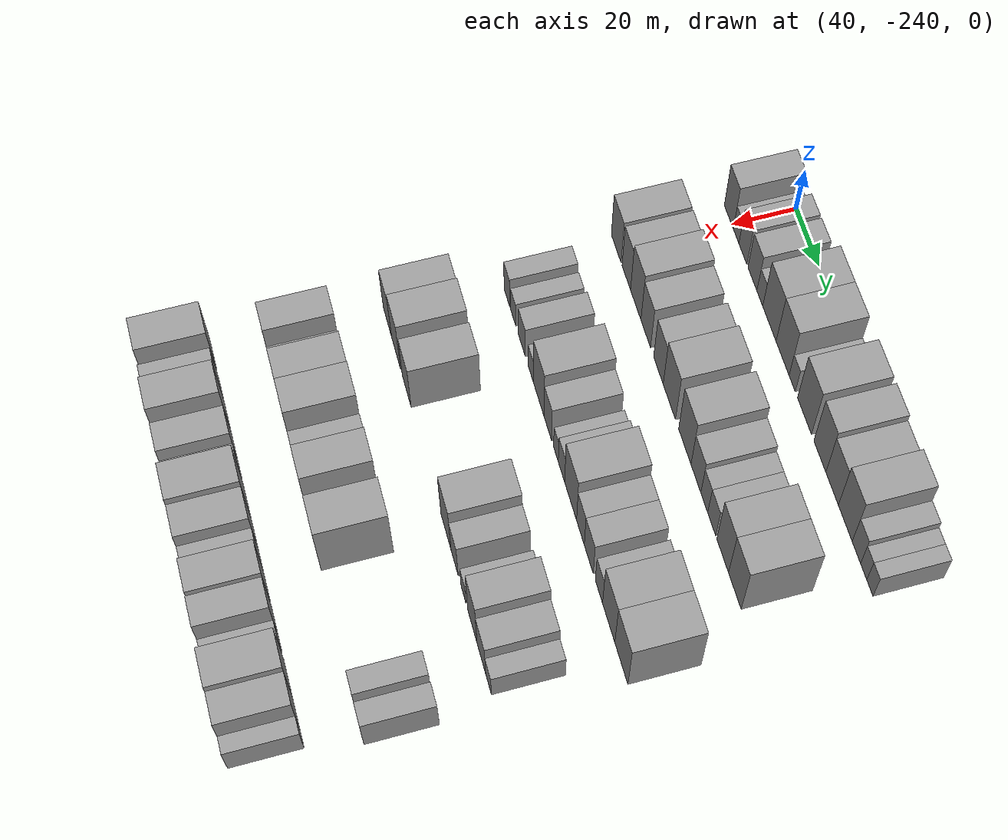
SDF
<sdf version="1.6">
 <world name="default">
  <model name="building_38">
   <static>1</static>
   <pose>50.0000 -242.8320 0 0.000000 0.000000 0.000000</pose>
   <link name="link">
    <pose>0 0 10.50 0 0 0</pose>
    <collision name="collision"><geometry><box><size>20.0000 8.5311 21.0000</size></box></geometry></collision>
    <visual name="visual">
     <cast_shadows>0</cast_shadows>
     <geometry><box><size>20.0000 8.5311 21.0000</size></box></geometry>
     <material>
      <script>
       <uri>model://grey_wall/materials/scripts</uri>
       <uri>model://grey_wall/materials/textures</uri>
       <name>vrc/grey_wall</name>
      </script>
     </material>
    </visual>
   </link>
  </model>
  <model name="building_39">
   <static>1</static>
   <pose>50.0000 -235.9867 0 0.000000 0.000000 0.000000</pose>
   <link name="link">
    <pose>0 0 6.00 0 0 0</pose>
    <collision name="collision"><geometry><box><size>20.0000 5.1596 12.0000</size></box></geometry></collision>
    <visual name="visual">
     <cast_shadows>0</cast_shadows>
     <geometry><box><size>20.0000 5.1596 12.0000</size></box></geometry>
     <material>
      <script>
       <uri>model://grey_wall/materials/scripts</uri>
       <uri>model://grey_wall/materials/textures</uri>
       <name>vrc/grey_wall</name>
      </script>
     </material>
    </visual>
   </link>
  </model>
  <model name="building_40">
   <static>1</static>
   <pose>50.0000 -229.7110 0 0.000000 0.000000 0.000000</pose>
   <link name="link">
    <pose>0 0 9.00 0 0 0</pose>
    <collision name="collision"><geometry><box><size>20.0000 7.3917 18.0000</size></box></geometry></collision>
    <visual name="visual">
     <cast_shadows>0</cast_shadows>
     <geometry><box><size>20.0000 7.3917 18.0000</size></box></geometry>
     <material>
      <script>
       <uri>model://grey_wall/materials/scripts</uri>
       <uri>model://grey_wall/materials/textures</uri>
       <name>vrc/grey_wall</name>
      </script>
     </material>
    </visual>
   </link>
  </model>
  <model name="building_41">
   <static>1</static>
   <pose>50.0000 -220.9175 0 0.000000 0.000000 0.000000</pose>
   <link name="link">
    <pose>0 0 9.00 0 0 0</pose>
    <collision name="collision"><geometry><box><size>20.0000 8.1954 18.0000</size></box></geometry></collision>
    <visual name="visual">
     <cast_shadows>0</cast_shadows>
     <geometry><box><size>20.0000 8.1954 18.0000</size></box></geometry>
     <material>
      <script>
       <uri>model://grey_wall/materials/scripts</uri>
       <uri>model://grey_wall/materials/textures</uri>
       <name>vrc/grey_wall</name>
      </script>
     </material>
    </visual>
   </link>
  </model>
  <model name="building_42">
   <static>1</static>
   <pose>50.0000 -214.1759 0 0.000000 0.000000 0.000000</pose>
   <link name="link">
    <pose>0 0 6.00 0 0 0</pose>
    <collision name="collision"><geometry><box><size>20.0000 5.2878 12.0000</size></box></geometry></collision>
    <visual name="visual">
     <cast_shadows>0</cast_shadows>
     <geometry><box><size>20.0000 5.2878 12.0000</size></box></geometry>
     <material>
      <script>
       <uri>model://grey_wall/materials/scripts</uri>
       <uri>model://grey_wall/materials/textures</uri>
       <name>vrc/grey_wall</name>
      </script>
     </material>
    </visual>
   </link>
  </model>
  <model name="building_43">
   <static>1</static>
   <pose>50.0000 -205.5564 0 0.000000 0.000000 0.000000</pose>
   <link name="link">
    <pose>0 0 12.00 0 0 0</pose>
    <collision name="collision"><geometry><box><size>20.0000 11.9513 24.0000</size></box></geometry></collision>
    <visual name="visual">
     <cast_shadows>0</cast_shadows>
     <geometry><box><size>20.0000 11.9513 24.0000</size></box></geometry>
     <material>
      <script>
       <uri>model://grey_wall/materials/scripts</uri>
       <uri>model://grey_wall/materials/textures</uri>
       <name>vrc/grey_wall</name>
      </script>
     </material>
    </visual>
   </link>
  </model>
  <model name="building_44">
   <static>1</static>
   <pose>50.0000 -193.8797 0 0.000000 0.000000 0.000000</pose>
   <link name="link">
    <pose>0 0 12.00 0 0 0</pose>
    <collision name="collision"><geometry><box><size>20.0000 11.4021 24.0000</size></box></geometry></collision>
    <visual name="visual">
     <cast_shadows>0</cast_shadows>
     <geometry><box><size>20.0000 11.4021 24.0000</size></box></geometry>
     <material>
      <script>
       <uri>model://grey_wall/materials/scripts</uri>
       <uri>model://grey_wall/materials/textures</uri>
       <name>vrc/grey_wall</name>
      </script>
     </material>
    </visual>
   </link>
  </model>
  <model name="building_45">
   <static>1</static>
   <pose>50.0000 -185.5075 0 0.000000 0.000000 0.000000</pose>
   <link name="link">
    <pose>0 0 6.00 0 0 0</pose>
    <collision name="collision"><geometry><box><size>20.0000 5.3423 12.0000</size></box></geometry></collision>
    <visual name="visual">
     <cast_shadows>0</cast_shadows>
     <geometry><box><size>20.0000 5.3423 12.0000</size></box></geometry>
     <material>
      <script>
       <uri>model://grey_wall/materials/scripts</uri>
       <uri>model://grey_wall/materials/textures</uri>
       <name>vrc/grey_wall</name>
      </script>
     </material>
    </visual>
   </link>
  </model>
  <model name="building_46">
   <static>1</static>
   <pose>50.0000 -174.8966 0 0.000000 0.000000 0.000000</pose>
   <link name="link">
    <pose>0 0 12.00 0 0 0</pose>
    <collision name="collision"><geometry><box><size>20.0000 11.8794 24.0000</size></box></geometry></collision>
    <visual name="visual">
     <cast_shadows>0</cast_shadows>
     <geometry><box><size>20.0000 11.8794 24.0000</size></box></geometry>
     <material>
      <script>
       <uri>model://grey_wall/materials/scripts</uri>
       <uri>model://grey_wall/materials/textures</uri>
       <name>vrc/grey_wall</name>
      </script>
     </material>
    </visual>
   </link>
  </model>
  <model name="building_47">
   <static>1</static>
   <pose>50.0000 -161.9570 0 0.000000 0.000000 0.000000</pose>
   <link name="link">
    <pose>0 0 12.00 0 0 0</pose>
    <collision name="collision"><geometry><box><size>20.0000 9.9998 24.0000</size></box></geometry></collision>
    <visual name="visual">
     <cast_shadows>0</cast_shadows>
     <geometry><box><size>20.0000 9.9998 24.0000</size></box></geometry>
     <material>
      <script>
       <uri>model://grey_wall/materials/scripts</uri>
       <uri>model://grey_wall/materials/textures</uri>
       <name>vrc/grey_wall</name>
      </script>
     </material>
    </visual>
   </link>
  </model>
  <model name="building_48">
   <static>1</static>
   <pose>50.0000 -151.8180 0 0.000000 0.000000 0.000000</pose>
   <link name="link">
    <pose>0 0 10.50 0 0 0</pose>
    <collision name="collision"><geometry><box><size>20.0000 10.2782 21.0000</size></box></geometry></collision>
    <visual name="visual">
     <cast_shadows>0</cast_shadows>
     <geometry><box><size>20.0000 10.2782 21.0000</size></box></geometry>
     <material>
      <script>
       <uri>model://grey_wall/materials/scripts</uri>
       <uri>model://grey_wall/materials/textures</uri>
       <name>vrc/grey_wall</name>
      </script>
     </material>
    </visual>
   </link>
  </model>
  <model name="building_49">
   <static>1</static>
   <pose>50.0000 -141.1139 0 0.000000 0.000000 0.000000</pose>
   <link name="link">
    <pose>0 0 12.00 0 0 0</pose>
    <collision name="collision"><geometry><box><size>20.0000 11.1299 24.0000</size></box></geometry></collision>
    <visual name="visual">
     <cast_shadows>0</cast_shadows>
     <geometry><box><size>20.0000 11.1299 24.0000</size></box></geometry>
     <material>
      <script>
       <uri>model://grey_wall/materials/scripts</uri>
       <uri>model://grey_wall/materials/textures</uri>
       <name>vrc/grey_wall</name>
      </script>
     </material>
    </visual>
   </link>
  </model>
  <model name="building_50">
   <static>1</static>
   <pose>50.0000 -132.1988 0 0.000000 0.000000 0.000000</pose>
   <link name="link">
    <pose>0 0 7.50 0 0 0</pose>
    <collision name="collision"><geometry><box><size>20.0000 6.7003 15.0000</size></box></geometry></collision>
    <visual name="visual">
     <cast_shadows>0</cast_shadows>
     <geometry><box><size>20.0000 6.7003 15.0000</size></box></geometry>
     <material>
      <script>
       <uri>model://grey_wall/materials/scripts</uri>
       <uri>model://grey_wall/materials/textures</uri>
       <name>vrc/grey_wall</name>
      </script>
     </material>
    </visual>
   </link>
  </model>
  <model name="building_51">
   <static>1</static>
   <pose>50.0000 -126.4093 0 0.000000 0.000000 0.000000</pose>
   <link name="link">
    <pose>0 0 6.00 0 0 0</pose>
    <collision name="collision"><geometry><box><size>20.0000 4.8786 12.0000</size></box></geometry></collision>
    <visual name="visual">
     <cast_shadows>0</cast_shadows>
     <geometry><box><size>20.0000 4.8786 12.0000</size></box></geometry>
     <material>
      <script>
       <uri>model://grey_wall/materials/scripts</uri>
       <uri>model://grey_wall/materials/textures</uri>
       <name>vrc/grey_wall</name>
      </script>
     </material>
    </visual>
   </link>
  </model>
  <model name="building_52">
   <static>1</static>
   <pose>50.0000 -121.5417 0 0.000000 0.000000 0.000000</pose>
   <link name="link">
    <pose>0 0 6.00 0 0 0</pose>
    <collision name="collision"><geometry><box><size>20.0000 4.8564 12.0000</size></box></geometry></collision>
    <visual name="visual">
     <cast_shadows>0</cast_shadows>
     <geometry><box><size>20.0000 4.8564 12.0000</size></box></geometry>
     <material>
      <script>
       <uri>model://grey_wall/materials/scripts</uri>
       <uri>model://grey_wall/materials/textures</uri>
       <name>vrc/grey_wall</name>
      </script>
     </material>
    </visual>
   </link>
  </model>
  <model name="building_160">
   <static>1</static>
   <pose>85.0000 -241.2254 0 0.000000 0.000000 0.000000</pose>
   <link name="link">
    <pose>0 0 10.50 0 0 0</pose>
    <collision name="collision"><geometry><box><size>20.0000 9.8680 21.0000</size></box></geometry></collision>
    <visual name="visual">
     <cast_shadows>0</cast_shadows>
     <geometry><box><size>20.0000 9.8680 21.0000</size></box></geometry>
     <material>
      <script>
       <uri>model://grey_wall/materials/scripts</uri>
       <uri>model://grey_wall/materials/textures</uri>
       <name>vrc/grey_wall</name>
      </script>
     </material>
    </visual>
   </link>
  </model>
  <model name="building_161">
   <static>1</static>
   <pose>85.0000 -231.0480 0 0.000000 0.000000 0.000000</pose>
   <link name="link">
    <pose>0 0 10.50 0 0 0</pose>
    <collision name="collision"><geometry><box><size>20.0000 8.4869 21.0000</size></box></geometry></collision>
    <visual name="visual">
     <cast_shadows>0</cast_shadows>
     <geometry><box><size>20.0000 8.4869 21.0000</size></box></geometry>
     <material>
      <script>
       <uri>model://grey_wall/materials/scripts</uri>
       <uri>model://grey_wall/materials/textures</uri>
       <name>vrc/grey_wall</name>
      </script>
     </material>
    </visual>
   </link>
  </model>
  <model name="building_162">
   <static>1</static>
   <pose>85.0000 -221.6470 0 0.000000 0.000000 0.000000</pose>
   <link name="link">
    <pose>0 0 12.00 0 0 0</pose>
    <collision name="collision"><geometry><box><size>20.0000 10.3151 24.0000</size></box></geometry></collision>
    <visual name="visual">
     <cast_shadows>0</cast_shadows>
     <geometry><box><size>20.0000 10.3151 24.0000</size></box></geometry>
     <material>
      <script>
       <uri>model://grey_wall/materials/scripts</uri>
       <uri>model://grey_wall/materials/textures</uri>
       <name>vrc/grey_wall</name>
      </script>
     </material>
    </visual>
   </link>
  </model>
  <model name="building_163">
   <static>1</static>
   <pose>85.0000 -211.7996 0 0.000000 0.000000 0.000000</pose>
   <link name="link">
    <pose>0 0 10.50 0 0 0</pose>
    <collision name="collision"><geometry><box><size>20.0000 9.3796 21.0000</size></box></geometry></collision>
    <visual name="visual">
     <cast_shadows>0</cast_shadows>
     <geometry><box><size>20.0000 9.3796 21.0000</size></box></geometry>
     <material>
      <script>
       <uri>model://grey_wall/materials/scripts</uri>
       <uri>model://grey_wall/materials/textures</uri>
       <name>vrc/grey_wall</name>
      </script>
     </material>
    </visual>
   </link>
  </model>
  <model name="building_164">
   <static>1</static>
   <pose>85.0000 -199.5471 0 0.000000 0.000000 0.000000</pose>
   <link name="link">
    <pose>0 0 10.50 0 0 0</pose>
    <collision name="collision"><geometry><box><size>20.0000 9.1254 21.0000</size></box></geometry></collision>
    <visual name="visual">
     <cast_shadows>0</cast_shadows>
     <geometry><box><size>20.0000 9.1254 21.0000</size></box></geometry>
     <material>
      <script>
       <uri>model://grey_wall/materials/scripts</uri>
       <uri>model://grey_wall/materials/textures</uri>
       <name>vrc/grey_wall</name>
      </script>
     </material>
    </visual>
   </link>
  </model>
  <model name="building_165">
   <static>1</static>
   <pose>85.0000 -189.2018 0 0.000000 0.000000 0.000000</pose>
   <link name="link">
    <pose>0 0 12.00 0 0 0</pose>
    <collision name="collision"><geometry><box><size>20.0000 11.5653 24.0000</size></box></geometry></collision>
    <visual name="visual">
     <cast_shadows>0</cast_shadows>
     <geometry><box><size>20.0000 11.5653 24.0000</size></box></geometry>
     <material>
      <script>
       <uri>model://grey_wall/materials/scripts</uri>
       <uri>model://grey_wall/materials/textures</uri>
       <name>vrc/grey_wall</name>
      </script>
     </material>
    </visual>
   </link>
  </model>
  <model name="building_166">
   <static>1</static>
   <pose>85.0000 -174.7429 0 0.000000 0.000000 0.000000</pose>
   <link name="link">
    <pose>0 0 12.00 0 0 0</pose>
    <collision name="collision"><geometry><box><size>20.0000 11.3525 24.0000</size></box></geometry></collision>
    <visual name="visual">
     <cast_shadows>0</cast_shadows>
     <geometry><box><size>20.0000 11.3525 24.0000</size></box></geometry>
     <material>
      <script>
       <uri>model://grey_wall/materials/scripts</uri>
       <uri>model://grey_wall/materials/textures</uri>
       <name>vrc/grey_wall</name>
      </script>
     </material>
    </visual>
   </link>
  </model>
  <model name="building_167">
   <static>1</static>
   <pose>85.0000 -164.6073 0 0.000000 0.000000 0.000000</pose>
   <link name="link">
    <pose>0 0 9.00 0 0 0</pose>
    <collision name="collision"><geometry><box><size>20.0000 8.9186 18.0000</size></box></geometry></collision>
    <visual name="visual">
     <cast_shadows>0</cast_shadows>
     <geometry><box><size>20.0000 8.9186 18.0000</size></box></geometry>
     <material>
      <script>
       <uri>model://grey_wall/materials/scripts</uri>
       <uri>model://grey_wall/materials/textures</uri>
       <name>vrc/grey_wall</name>
      </script>
     </material>
    </visual>
   </link>
  </model>
  <model name="building_168">
   <static>1</static>
   <pose>85.0000 -157.0738 0 0.000000 0.000000 0.000000</pose>
   <link name="link">
    <pose>0 0 7.50 0 0 0</pose>
    <collision name="collision"><geometry><box><size>20.0000 6.1484 15.0000</size></box></geometry></collision>
    <visual name="visual">
     <cast_shadows>0</cast_shadows>
     <geometry><box><size>20.0000 6.1484 15.0000</size></box></geometry>
     <material>
      <script>
       <uri>model://grey_wall/materials/scripts</uri>
       <uri>model://grey_wall/materials/textures</uri>
       <name>vrc/grey_wall</name>
      </script>
     </material>
    </visual>
   </link>
  </model>
  <model name="building_169">
   <static>1</static>
   <pose>85.0000 -150.4906 0 0.000000 0.000000 0.000000</pose>
   <link name="link">
    <pose>0 0 7.50 0 0 0</pose>
    <collision name="collision"><geometry><box><size>20.0000 7.0179 15.0000</size></box></geometry></collision>
    <visual name="visual">
     <cast_shadows>0</cast_shadows>
     <geometry><box><size>20.0000 7.0179 15.0000</size></box></geometry>
     <material>
      <script>
       <uri>model://grey_wall/materials/scripts</uri>
       <uri>model://grey_wall/materials/textures</uri>
       <name>vrc/grey_wall</name>
      </script>
     </material>
    </visual>
   </link>
  </model>
  <model name="building_170">
   <static>1</static>
   <pose>85.0000 -140.8677 0 0.000000 0.000000 0.000000</pose>
   <link name="link">
    <pose>0 0 12.00 0 0 0</pose>
    <collision name="collision"><geometry><box><size>20.0000 10.2279 24.0000</size></box></geometry></collision>
    <visual name="visual">
     <cast_shadows>0</cast_shadows>
     <geometry><box><size>20.0000 10.2279 24.0000</size></box></geometry>
     <material>
      <script>
       <uri>model://grey_wall/materials/scripts</uri>
       <uri>model://grey_wall/materials/textures</uri>
       <name>vrc/grey_wall</name>
      </script>
     </material>
    </visual>
   </link>
  </model>
  <model name="building_171">
   <static>1</static>
   <pose>85.0000 -130.3423 0 0.000000 0.000000 0.000000</pose>
   <link name="link">
    <pose>0 0 12.00 0 0 0</pose>
    <collision name="collision"><geometry><box><size>20.0000 10.8228 24.0000</size></box></geometry></collision>
    <visual name="visual">
     <cast_shadows>0</cast_shadows>
     <geometry><box><size>20.0000 10.8228 24.0000</size></box></geometry>
     <material>
      <script>
       <uri>model://grey_wall/materials/scripts</uri>
       <uri>model://grey_wall/materials/textures</uri>
       <name>vrc/grey_wall</name>
      </script>
     </material>
    </visual>
   </link>
  </model>
  <model name="building_285">
   <static>1</static>
   <pose>120.0000 -233.6091 0 0.000000 0.000000 0.000000</pose>
   <link name="link">
    <pose>0 0 7.50 0 0 0</pose>
    <collision name="collision"><geometry><box><size>20.0000 6.1214 15.0000</size></box></geometry></collision>
    <visual name="visual">
     <cast_shadows>0</cast_shadows>
     <geometry><box><size>20.0000 6.1214 15.0000</size></box></geometry>
     <material>
      <script>
       <uri>model://grey_wall/materials/scripts</uri>
       <uri>model://grey_wall/materials/textures</uri>
       <name>vrc/grey_wall</name>
      </script>
     </material>
    </visual>
   </link>
  </model>
  <model name="building_286">
   <static>1</static>
   <pose>120.0000 -226.8102 0 0.000000 0.000000 0.000000</pose>
   <link name="link">
    <pose>0 0 6.00 0 0 0</pose>
    <collision name="collision"><geometry><box><size>20.0000 5.4764 12.0000</size></box></geometry></collision>
    <visual name="visual">
     <cast_shadows>0</cast_shadows>
     <geometry><box><size>20.0000 5.4764 12.0000</size></box></geometry>
     <material>
      <script>
       <uri>model://grey_wall/materials/scripts</uri>
       <uri>model://grey_wall/materials/textures</uri>
       <name>vrc/grey_wall</name>
      </script>
     </material>
    </visual>
   </link>
  </model>
  <model name="building_287">
   <static>1</static>
   <pose>120.0000 -217.4553 0 0.000000 0.000000 0.000000</pose>
   <link name="link">
    <pose>0 0 7.50 0 0 0</pose>
    <collision name="collision"><geometry><box><size>20.0000 7.2334 15.0000</size></box></geometry></collision>
    <visual name="visual">
     <cast_shadows>0</cast_shadows>
     <geometry><box><size>20.0000 7.2334 15.0000</size></box></geometry>
     <material>
      <script>
       <uri>model://grey_wall/materials/scripts</uri>
       <uri>model://grey_wall/materials/textures</uri>
       <name>vrc/grey_wall</name>
      </script>
     </material>
    </visual>
   </link>
  </model>
  <model name="building_288">
   <static>1</static>
   <pose>120.0000 -208.0695 0 0.000000 0.000000 0.000000</pose>
   <link name="link">
    <pose>0 0 6.00 0 0 0</pose>
    <collision name="collision"><geometry><box><size>20.0000 5.5383 12.0000</size></box></geometry></collision>
    <visual name="visual">
     <cast_shadows>0</cast_shadows>
     <geometry><box><size>20.0000 5.5383 12.0000</size></box></geometry>
     <material>
      <script>
       <uri>model://grey_wall/materials/scripts</uri>
       <uri>model://grey_wall/materials/textures</uri>
       <name>vrc/grey_wall</name>
      </script>
     </material>
    </visual>
   </link>
  </model>
  <model name="building_289">
   <static>1</static>
   <pose>120.0000 -199.6858 0 0.000000 0.000000 0.000000</pose>
   <link name="link">
    <pose>0 0 12.00 0 0 0</pose>
    <collision name="collision"><geometry><box><size>20.0000 11.2291 24.0000</size></box></geometry></collision>
    <visual name="visual">
     <cast_shadows>0</cast_shadows>
     <geometry><box><size>20.0000 11.2291 24.0000</size></box></geometry>
     <material>
      <script>
       <uri>model://grey_wall/materials/scripts</uri>
       <uri>model://grey_wall/materials/textures</uri>
       <name>vrc/grey_wall</name>
      </script>
     </material>
    </visual>
   </link>
  </model>
  <model name="building_290">
   <static>1</static>
   <pose>120.0000 -190.2010 0 0.000000 0.000000 0.000000</pose>
   <link name="link">
    <pose>0 0 9.00 0 0 0</pose>
    <collision name="collision"><geometry><box><size>20.0000 7.7405 18.0000</size></box></geometry></collision>
    <visual name="visual">
     <cast_shadows>0</cast_shadows>
     <geometry><box><size>20.0000 7.7405 18.0000</size></box></geometry>
     <material>
      <script>
       <uri>model://grey_wall/materials/scripts</uri>
       <uri>model://grey_wall/materials/textures</uri>
       <name>vrc/grey_wall</name>
      </script>
     </material>
    </visual>
   </link>
  </model>
  <model name="building_291">
   <static>1</static>
   <pose>120.0000 -181.9193 0 0.000000 0.000000 0.000000</pose>
   <link name="link">
    <pose>0 0 6.00 0 0 0</pose>
    <collision name="collision"><geometry><box><size>20.0000 4.8228 12.0000</size></box></geometry></collision>
    <visual name="visual">
     <cast_shadows>0</cast_shadows>
     <geometry><box><size>20.0000 4.8228 12.0000</size></box></geometry>
     <material>
      <script>
       <uri>model://grey_wall/materials/scripts</uri>
       <uri>model://grey_wall/materials/textures</uri>
       <name>vrc/grey_wall</name>
      </script>
     </material>
    </visual>
   </link>
  </model>
  <model name="building_292">
   <static>1</static>
   <pose>120.0000 -176.3178 0 0.000000 0.000000 0.000000</pose>
   <link name="link">
    <pose>0 0 7.50 0 0 0</pose>
    <collision name="collision"><geometry><box><size>20.0000 6.3802 15.0000</size></box></geometry></collision>
    <visual name="visual">
     <cast_shadows>0</cast_shadows>
     <geometry><box><size>20.0000 6.3802 15.0000</size></box></geometry>
     <material>
      <script>
       <uri>model://grey_wall/materials/scripts</uri>
       <uri>model://grey_wall/materials/textures</uri>
       <name>vrc/grey_wall</name>
      </script>
     </material>
    </visual>
   </link>
  </model>
  <model name="building_293">
   <static>1</static>
   <pose>120.0000 -167.2081 0 0.000000 0.000000 0.000000</pose>
   <link name="link">
    <pose>0 0 12.00 0 0 0</pose>
    <collision name="collision"><geometry><box><size>20.0000 11.8393 24.0000</size></box></geometry></collision>
    <visual name="visual">
     <cast_shadows>0</cast_shadows>
     <geometry><box><size>20.0000 11.8393 24.0000</size></box></geometry>
     <material>
      <script>
       <uri>model://grey_wall/materials/scripts</uri>
       <uri>model://grey_wall/materials/textures</uri>
       <name>vrc/grey_wall</name>
      </script>
     </material>
    </visual>
   </link>
  </model>
  <model name="building_294">
   <static>1</static>
   <pose>120.0000 -157.5382 0 0.000000 0.000000 0.000000</pose>
   <link name="link">
    <pose>0 0 9.00 0 0 0</pose>
    <collision name="collision"><geometry><box><size>20.0000 7.5005 18.0000</size></box></geometry></collision>
    <visual name="visual">
     <cast_shadows>0</cast_shadows>
     <geometry><box><size>20.0000 7.5005 18.0000</size></box></geometry>
     <material>
      <script>
       <uri>model://grey_wall/materials/scripts</uri>
       <uri>model://grey_wall/materials/textures</uri>
       <name>vrc/grey_wall</name>
      </script>
     </material>
    </visual>
   </link>
  </model>
  <model name="building_295">
   <static>1</static>
   <pose>120.0000 -149.4985 0 0.000000 0.000000 0.000000</pose>
   <link name="link">
    <pose>0 0 9.00 0 0 0</pose>
    <collision name="collision"><geometry><box><size>20.0000 8.5791 18.0000</size></box></geometry></collision>
    <visual name="visual">
     <cast_shadows>0</cast_shadows>
     <geometry><box><size>20.0000 8.5791 18.0000</size></box></geometry>
     <material>
      <script>
       <uri>model://grey_wall/materials/scripts</uri>
       <uri>model://grey_wall/materials/textures</uri>
       <name>vrc/grey_wall</name>
      </script>
     </material>
    </visual>
   </link>
  </model>
  <model name="building_296">
   <static>1</static>
   <pose>120.0000 -139.7792 0 0.000000 0.000000 0.000000</pose>
   <link name="link">
    <pose>0 0 7.50 0 0 0</pose>
    <collision name="collision"><geometry><box><size>20.0000 6.8595 15.0000</size></box></geometry></collision>
    <visual name="visual">
     <cast_shadows>0</cast_shadows>
     <geometry><box><size>20.0000 6.8595 15.0000</size></box></geometry>
     <material>
      <script>
       <uri>model://grey_wall/materials/scripts</uri>
       <uri>model://grey_wall/materials/textures</uri>
       <name>vrc/grey_wall</name>
      </script>
     </material>
    </visual>
   </link>
  </model>
  <model name="building_297">
   <static>1</static>
   <pose>120.0000 -130.6181 0 0.000000 0.000000 0.000000</pose>
   <link name="link">
    <pose>0 0 12.00 0 0 0</pose>
    <collision name="collision"><geometry><box><size>20.0000 11.4626 24.0000</size></box></geometry></collision>
    <visual name="visual">
     <cast_shadows>0</cast_shadows>
     <geometry><box><size>20.0000 11.4626 24.0000</size></box></geometry>
     <material>
      <script>
       <uri>model://grey_wall/materials/scripts</uri>
       <uri>model://grey_wall/materials/textures</uri>
       <name>vrc/grey_wall</name>
      </script>
     </material>
    </visual>
   </link>
  </model>
  <model name="building_298">
   <static>1</static>
   <pose>120.0000 -118.9094 0 0.000000 0.000000 0.000000</pose>
   <link name="link">
    <pose>0 0 12.00 0 0 0</pose>
    <collision name="collision"><geometry><box><size>20.0000 11.9548 24.0000</size></box></geometry></collision>
    <visual name="visual">
     <cast_shadows>0</cast_shadows>
     <geometry><box><size>20.0000 11.9548 24.0000</size></box></geometry>
     <material>
      <script>
       <uri>model://grey_wall/materials/scripts</uri>
       <uri>model://grey_wall/materials/textures</uri>
       <name>vrc/grey_wall</name>
      </script>
     </material>
    </visual>
   </link>
  </model>
  <model name="building_412">
   <static>1</static>
   <pose>155.0000 -234.8505 0 0.000000 0.000000 0.000000</pose>
   <link name="link">
    <pose>0 0 10.50 0 0 0</pose>
    <collision name="collision"><geometry><box><size>20.0000 9.9858 21.0000</size></box></geometry></collision>
    <visual name="visual">
     <cast_shadows>0</cast_shadows>
     <geometry><box><size>20.0000 9.9858 21.0000</size></box></geometry>
     <material>
      <script>
       <uri>model://grey_wall/materials/scripts</uri>
       <uri>model://grey_wall/materials/textures</uri>
       <name>vrc/grey_wall</name>
      </script>
     </material>
    </visual>
   </link>
  </model>
  <model name="building_413">
   <static>1</static>
   <pose>155.0000 -224.4941 0 0.000000 0.000000 0.000000</pose>
   <link name="link">
    <pose>0 0 12.00 0 0 0</pose>
    <collision name="collision"><geometry><box><size>20.0000 10.7269 24.0000</size></box></geometry></collision>
    <visual name="visual">
     <cast_shadows>0</cast_shadows>
     <geometry><box><size>20.0000 10.7269 24.0000</size></box></geometry>
     <material>
      <script>
       <uri>model://grey_wall/materials/scripts</uri>
       <uri>model://grey_wall/materials/textures</uri>
       <name>vrc/grey_wall</name>
      </script>
     </material>
    </visual>
   </link>
  </model>
  <model name="building_414">
   <static>1</static>
   <pose>155.0000 -211.9144 0 0.000000 0.000000 0.000000</pose>
   <link name="link">
    <pose>0 0 10.50 0 0 0</pose>
    <collision name="collision"><geometry><box><size>20.0000 10.4326 21.0000</size></box></geometry></collision>
    <visual name="visual">
     <cast_shadows>0</cast_shadows>
     <geometry><box><size>20.0000 10.4326 21.0000</size></box></geometry>
     <material>
      <script>
       <uri>model://grey_wall/materials/scripts</uri>
       <uri>model://grey_wall/materials/textures</uri>
       <name>vrc/grey_wall</name>
      </script>
     </material>
    </visual>
   </link>
  </model>
  <model name="building_415">
   <static>1</static>
   <pose>155.0000 -167.3942 0 0.000000 0.000000 0.000000</pose>
   <link name="link">
    <pose>0 0 12.00 0 0 0</pose>
    <collision name="collision"><geometry><box><size>20.0000 10.8693 24.0000</size></box></geometry></collision>
    <visual name="visual">
     <cast_shadows>0</cast_shadows>
     <geometry><box><size>20.0000 10.8693 24.0000</size></box></geometry>
     <material>
      <script>
       <uri>model://grey_wall/materials/scripts</uri>
       <uri>model://grey_wall/materials/textures</uri>
       <name>vrc/grey_wall</name>
      </script>
     </material>
    </visual>
   </link>
  </model>
  <model name="building_416">
   <static>1</static>
   <pose>155.0000 -158.0634 0 0.000000 0.000000 0.000000</pose>
   <link name="link">
    <pose>0 0 9.00 0 0 0</pose>
    <collision name="collision"><geometry><box><size>20.0000 7.7922 18.0000</size></box></geometry></collision>
    <visual name="visual">
     <cast_shadows>0</cast_shadows>
     <geometry><box><size>20.0000 7.7922 18.0000</size></box></geometry>
     <material>
      <script>
       <uri>model://grey_wall/materials/scripts</uri>
       <uri>model://grey_wall/materials/textures</uri>
       <name>vrc/grey_wall</name>
      </script>
     </material>
    </visual>
   </link>
  </model>
  <model name="building_417">
   <static>1</static>
   <pose>155.0000 -148.6372 0 0.000000 0.000000 0.000000</pose>
   <link name="link">
    <pose>0 0 6.00 0 0 0</pose>
    <collision name="collision"><geometry><box><size>20.0000 5.0602 12.0000</size></box></geometry></collision>
    <visual name="visual">
     <cast_shadows>0</cast_shadows>
     <geometry><box><size>20.0000 5.0602 12.0000</size></box></geometry>
     <material>
      <script>
       <uri>model://grey_wall/materials/scripts</uri>
       <uri>model://grey_wall/materials/textures</uri>
       <name>vrc/grey_wall</name>
      </script>
     </material>
    </visual>
   </link>
  </model>
  <model name="building_418">
   <static>1</static>
   <pose>155.0000 -139.2772 0 0.000000 0.000000 0.000000</pose>
   <link name="link">
    <pose>0 0 12.00 0 0 0</pose>
    <collision name="collision"><geometry><box><size>20.0000 9.6598 24.0000</size></box></geometry></collision>
    <visual name="visual">
     <cast_shadows>0</cast_shadows>
     <geometry><box><size>20.0000 9.6598 24.0000</size></box></geometry>
     <material>
      <script>
       <uri>model://grey_wall/materials/scripts</uri>
       <uri>model://grey_wall/materials/textures</uri>
       <name>vrc/grey_wall</name>
      </script>
     </material>
    </visual>
   </link>
  </model>
  <model name="building_419">
   <static>1</static>
   <pose>155.0000 -129.9913 0 0.000000 0.000000 0.000000</pose>
   <link name="link">
    <pose>0 0 9.00 0 0 0</pose>
    <collision name="collision"><geometry><box><size>20.0000 8.9119 18.0000</size></box></geometry></collision>
    <visual name="visual">
     <cast_shadows>0</cast_shadows>
     <geometry><box><size>20.0000 8.9119 18.0000</size></box></geometry>
     <material>
      <script>
       <uri>model://grey_wall/materials/scripts</uri>
       <uri>model://grey_wall/materials/textures</uri>
       <name>vrc/grey_wall</name>
      </script>
     </material>
    </visual>
   </link>
  </model>
  <model name="building_420">
   <static>1</static>
   <pose>155.0000 -122.6003 0 0.000000 0.000000 0.000000</pose>
   <link name="link">
    <pose>0 0 6.00 0 0 0</pose>
    <collision name="collision"><geometry><box><size>20.0000 5.8702 12.0000</size></box></geometry></collision>
    <visual name="visual">
     <cast_shadows>0</cast_shadows>
     <geometry><box><size>20.0000 5.8702 12.0000</size></box></geometry>
     <material>
      <script>
       <uri>model://grey_wall/materials/scripts</uri>
       <uri>model://grey_wall/materials/textures</uri>
       <name>vrc/grey_wall</name>
      </script>
     </material>
    </visual>
   </link>
  </model>
  <model name="building_534">
   <static>1</static>
   <pose>190.0000 -234.1746 0 0.000000 0.000000 0.000000</pose>
   <link name="link">
    <pose>0 0 10.50 0 0 0</pose>
    <collision name="collision"><geometry><box><size>20.0000 9.2848 21.0000</size></box></geometry></collision>
    <visual name="visual">
     <cast_shadows>0</cast_shadows>
     <geometry><box><size>20.0000 9.2848 21.0000</size></box></geometry>
     <material>
      <script>
       <uri>model://grey_wall/materials/scripts</uri>
       <uri>model://grey_wall/materials/textures</uri>
       <name>vrc/grey_wall</name>
      </script>
     </material>
    </visual>
   </link>
  </model>
  <model name="building_535">
   <static>1</static>
   <pose>190.0000 -226.7036 0 0.000000 0.000000 0.000000</pose>
   <link name="link">
    <pose>0 0 6.00 0 0 0</pose>
    <collision name="collision"><geometry><box><size>20.0000 5.6573 12.0000</size></box></geometry></collision>
    <visual name="visual">
     <cast_shadows>0</cast_shadows>
     <geometry><box><size>20.0000 5.6573 12.0000</size></box></geometry>
     <material>
      <script>
       <uri>model://grey_wall/materials/scripts</uri>
       <uri>model://grey_wall/materials/textures</uri>
       <name>vrc/grey_wall</name>
      </script>
     </material>
    </visual>
   </link>
  </model>
  <model name="building_536">
   <static>1</static>
   <pose>190.0000 -218.7456 0 0.000000 0.000000 0.000000</pose>
   <link name="link">
    <pose>0 0 10.50 0 0 0</pose>
    <collision name="collision"><geometry><box><size>20.0000 10.2587 21.0000</size></box></geometry></collision>
    <visual name="visual">
     <cast_shadows>0</cast_shadows>
     <geometry><box><size>20.0000 10.2587 21.0000</size></box></geometry>
     <material>
      <script>
       <uri>model://grey_wall/materials/scripts</uri>
       <uri>model://grey_wall/materials/textures</uri>
       <name>vrc/grey_wall</name>
      </script>
     </material>
    </visual>
   </link>
  </model>
  <model name="building_537">
   <static>1</static>
   <pose>190.0000 -207.2745 0 0.000000 0.000000 0.000000</pose>
   <link name="link">
    <pose>0 0 12.00 0 0 0</pose>
    <collision name="collision"><geometry><box><size>20.0000 10.6834 24.0000</size></box></geometry></collision>
    <visual name="visual">
     <cast_shadows>0</cast_shadows>
     <geometry><box><size>20.0000 10.6834 24.0000</size></box></geometry>
     <material>
      <script>
       <uri>model://grey_wall/materials/scripts</uri>
       <uri>model://grey_wall/materials/textures</uri>
       <name>vrc/grey_wall</name>
      </script>
     </material>
    </visual>
   </link>
  </model>
  <model name="building_538">
   <static>1</static>
   <pose>190.0000 -197.2865 0 0.000000 0.000000 0.000000</pose>
   <link name="link">
    <pose>0 0 7.50 0 0 0</pose>
    <collision name="collision"><geometry><box><size>20.0000 7.2927 15.0000</size></box></geometry></collision>
    <visual name="visual">
     <cast_shadows>0</cast_shadows>
     <geometry><box><size>20.0000 7.2927 15.0000</size></box></geometry>
     <material>
      <script>
       <uri>model://grey_wall/materials/scripts</uri>
       <uri>model://grey_wall/materials/textures</uri>
       <name>vrc/grey_wall</name>
      </script>
     </material>
    </visual>
   </link>
  </model>
  <model name="building_539">
   <static>1</static>
   <pose>190.0000 -188.5120 0 0.000000 0.000000 0.000000</pose>
   <link name="link">
    <pose>0 0 10.50 0 0 0</pose>
    <collision name="collision"><geometry><box><size>20.0000 10.2561 21.0000</size></box></geometry></collision>
    <visual name="visual">
     <cast_shadows>0</cast_shadows>
     <geometry><box><size>20.0000 10.2561 21.0000</size></box></geometry>
     <material>
      <script>
       <uri>model://grey_wall/materials/scripts</uri>
       <uri>model://grey_wall/materials/textures</uri>
       <name>vrc/grey_wall</name>
      </script>
     </material>
    </visual>
   </link>
  </model>
  <model name="building_540">
   <static>1</static>
   <pose>190.0000 -179.7095 0 0.000000 0.000000 0.000000</pose>
   <link name="link">
    <pose>0 0 6.00 0 0 0</pose>
    <collision name="collision"><geometry><box><size>20.0000 5.3489 12.0000</size></box></geometry></collision>
    <visual name="visual">
     <cast_shadows>0</cast_shadows>
     <geometry><box><size>20.0000 5.3489 12.0000</size></box></geometry>
     <material>
      <script>
       <uri>model://grey_wall/materials/scripts</uri>
       <uri>model://grey_wall/materials/textures</uri>
       <name>vrc/grey_wall</name>
      </script>
     </material>
    </visual>
   </link>
  </model>
  <model name="building_541">
   <static>1</static>
   <pose>190.0000 -171.2456 0 0.000000 0.000000 0.000000</pose>
   <link name="link">
    <pose>0 0 12.00 0 0 0</pose>
    <collision name="collision"><geometry><box><size>20.0000 11.5791 24.0000</size></box></geometry></collision>
    <visual name="visual">
     <cast_shadows>0</cast_shadows>
     <geometry><box><size>20.0000 11.5791 24.0000</size></box></geometry>
     <material>
      <script>
       <uri>model://grey_wall/materials/scripts</uri>
       <uri>model://grey_wall/materials/textures</uri>
       <name>vrc/grey_wall</name>
      </script>
     </material>
    </visual>
   </link>
  </model>
  <model name="building_542">
   <static>1</static>
   <pose>190.0000 -127.4809 0 0.000000 0.000000 0.000000</pose>
   <link name="link">
    <pose>0 0 7.50 0 0 0</pose>
    <collision name="collision"><geometry><box><size>20.0000 6.6501 15.0000</size></box></geometry></collision>
    <visual name="visual">
     <cast_shadows>0</cast_shadows>
     <geometry><box><size>20.0000 6.6501 15.0000</size></box></geometry>
     <material>
      <script>
       <uri>model://grey_wall/materials/scripts</uri>
       <uri>model://grey_wall/materials/textures</uri>
       <name>vrc/grey_wall</name>
      </script>
     </material>
    </visual>
   </link>
  </model>
  <model name="building_543">
   <static>1</static>
   <pose>190.0000 -118.8023 0 0.000000 0.000000 0.000000</pose>
   <link name="link">
    <pose>0 0 7.50 0 0 0</pose>
    <collision name="collision"><geometry><box><size>20.0000 6.7070 15.0000</size></box></geometry></collision>
    <visual name="visual">
     <cast_shadows>0</cast_shadows>
     <geometry><box><size>20.0000 6.7070 15.0000</size></box></geometry>
     <material>
      <script>
       <uri>model://grey_wall/materials/scripts</uri>
       <uri>model://grey_wall/materials/textures</uri>
       <name>vrc/grey_wall</name>
      </script>
     </material>
    </visual>
   </link>
  </model>
  <model name="building_658">
   <static>1</static>
   <pose>225.0000 -238.1296 0 0.000000 0.000000 0.000000</pose>
   <link name="link">
    <pose>0 0 10.50 0 0 0</pose>
    <collision name="collision"><geometry><box><size>20.0000 10.3294 21.0000</size></box></geometry></collision>
    <visual name="visual">
     <cast_shadows>0</cast_shadows>
     <geometry><box><size>20.0000 10.3294 21.0000</size></box></geometry>
     <material>
      <script>
       <uri>model://grey_wall/materials/scripts</uri>
       <uri>model://grey_wall/materials/textures</uri>
       <name>vrc/grey_wall</name>
      </script>
     </material>
    </visual>
   </link>
  </model>
  <model name="building_659">
   <static>1</static>
   <pose>225.0000 -226.3615 0 0.000000 0.000000 0.000000</pose>
   <link name="link">
    <pose>0 0 9.00 0 0 0</pose>
    <collision name="collision"><geometry><box><size>20.0000 7.2068 18.0000</size></box></geometry></collision>
    <visual name="visual">
     <cast_shadows>0</cast_shadows>
     <geometry><box><size>20.0000 7.2068 18.0000</size></box></geometry>
     <material>
      <script>
       <uri>model://grey_wall/materials/scripts</uri>
       <uri>model://grey_wall/materials/textures</uri>
       <name>vrc/grey_wall</name>
      </script>
     </material>
    </visual>
   </link>
  </model>
  <model name="building_660">
   <static>1</static>
   <pose>225.0000 -217.7010 0 0.000000 0.000000 0.000000</pose>
   <link name="link">
    <pose>0 0 12.00 0 0 0</pose>
    <collision name="collision"><geometry><box><size>20.0000 10.1142 24.0000</size></box></geometry></collision>
    <visual name="visual">
     <cast_shadows>0</cast_shadows>
     <geometry><box><size>20.0000 10.1142 24.0000</size></box></geometry>
     <material>
      <script>
       <uri>model://grey_wall/materials/scripts</uri>
       <uri>model://grey_wall/materials/textures</uri>
       <name>vrc/grey_wall</name>
      </script>
     </material>
    </visual>
   </link>
  </model>
  <model name="building_661">
   <static>1</static>
   <pose>225.0000 -207.2661 0 0.000000 0.000000 0.000000</pose>
   <link name="link">
    <pose>0 0 9.00 0 0 0</pose>
    <collision name="collision"><geometry><box><size>20.0000 8.7556 18.0000</size></box></geometry></collision>
    <visual name="visual">
     <cast_shadows>0</cast_shadows>
     <geometry><box><size>20.0000 8.7556 18.0000</size></box></geometry>
     <material>
      <script>
       <uri>model://grey_wall/materials/scripts</uri>
       <uri>model://grey_wall/materials/textures</uri>
       <name>vrc/grey_wall</name>
      </script>
     </material>
    </visual>
   </link>
  </model>
  <model name="building_662">
   <static>1</static>
   <pose>225.0000 -200.1380 0 0.000000 0.000000 0.000000</pose>
   <link name="link">
    <pose>0 0 6.00 0 0 0</pose>
    <collision name="collision"><geometry><box><size>20.0000 5.5006 12.0000</size></box></geometry></collision>
    <visual name="visual">
     <cast_shadows>0</cast_shadows>
     <geometry><box><size>20.0000 5.5006 12.0000</size></box></geometry>
     <material>
      <script>
       <uri>model://grey_wall/materials/scripts</uri>
       <uri>model://grey_wall/materials/textures</uri>
       <name>vrc/grey_wall</name>
      </script>
     </material>
    </visual>
   </link>
  </model>
  <model name="building_663">
   <static>1</static>
   <pose>225.0000 -190.8780 0 0.000000 0.000000 0.000000</pose>
   <link name="link">
    <pose>0 0 12.00 0 0 0</pose>
    <collision name="collision"><geometry><box><size>20.0000 11.0194 24.0000</size></box></geometry></collision>
    <visual name="visual">
     <cast_shadows>0</cast_shadows>
     <geometry><box><size>20.0000 11.0194 24.0000</size></box></geometry>
     <material>
      <script>
       <uri>model://grey_wall/materials/scripts</uri>
       <uri>model://grey_wall/materials/textures</uri>
       <name>vrc/grey_wall</name>
      </script>
     </material>
    </visual>
   </link>
  </model>
  <model name="building_664">
   <static>1</static>
   <pose>225.0000 -180.5954 0 0.000000 0.000000 0.000000</pose>
   <link name="link">
    <pose>0 0 10.50 0 0 0</pose>
    <collision name="collision"><geometry><box><size>20.0000 9.5458 21.0000</size></box></geometry></collision>
    <visual name="visual">
     <cast_shadows>0</cast_shadows>
     <geometry><box><size>20.0000 9.5458 21.0000</size></box></geometry>
     <material>
      <script>
       <uri>model://grey_wall/materials/scripts</uri>
       <uri>model://grey_wall/materials/textures</uri>
       <name>vrc/grey_wall</name>
      </script>
     </material>
    </visual>
   </link>
  </model>
  <model name="building_665">
   <static>1</static>
   <pose>225.0000 -172.7763 0 0.000000 0.000000 0.000000</pose>
   <link name="link">
    <pose>0 0 7.50 0 0 0</pose>
    <collision name="collision"><geometry><box><size>20.0000 6.0924 15.0000</size></box></geometry></collision>
    <visual name="visual">
     <cast_shadows>0</cast_shadows>
     <geometry><box><size>20.0000 6.0924 15.0000</size></box></geometry>
     <material>
      <script>
       <uri>model://grey_wall/materials/scripts</uri>
       <uri>model://grey_wall/materials/textures</uri>
       <name>vrc/grey_wall</name>
      </script>
     </material>
    </visual>
   </link>
  </model>
  <model name="building_666">
   <static>1</static>
   <pose>225.0000 -164.8526 0 0.000000 0.000000 0.000000</pose>
   <link name="link">
    <pose>0 0 10.50 0 0 0</pose>
    <collision name="collision"><geometry><box><size>20.0000 9.7551 21.0000</size></box></geometry></collision>
    <visual name="visual">
     <cast_shadows>0</cast_shadows>
     <geometry><box><size>20.0000 9.7551 21.0000</size></box></geometry>
     <material>
      <script>
       <uri>model://grey_wall/materials/scripts</uri>
       <uri>model://grey_wall/materials/textures</uri>
       <name>vrc/grey_wall</name>
      </script>
     </material>
    </visual>
   </link>
  </model>
  <model name="building_667">
   <static>1</static>
   <pose>225.0000 -154.6159 0 0.000000 0.000000 0.000000</pose>
   <link name="link">
    <pose>0 0 10.50 0 0 0</pose>
    <collision name="collision"><geometry><box><size>20.0000 8.7183 21.0000</size></box></geometry></collision>
    <visual name="visual">
     <cast_shadows>0</cast_shadows>
     <geometry><box><size>20.0000 8.7183 21.0000</size></box></geometry>
     <material>
      <script>
       <uri>model://grey_wall/materials/scripts</uri>
       <uri>model://grey_wall/materials/textures</uri>
       <name>vrc/grey_wall</name>
      </script>
     </material>
    </visual>
   </link>
  </model>
  <model name="building_668">
   <static>1</static>
   <pose>225.0000 -147.8542 0 0.000000 0.000000 0.000000</pose>
   <link name="link">
    <pose>0 0 6.00 0 0 0</pose>
    <collision name="collision"><geometry><box><size>20.0000 4.8052 12.0000</size></box></geometry></collision>
    <visual name="visual">
     <cast_shadows>0</cast_shadows>
     <geometry><box><size>20.0000 4.8052 12.0000</size></box></geometry>
     <material>
      <script>
       <uri>model://grey_wall/materials/scripts</uri>
       <uri>model://grey_wall/materials/textures</uri>
       <name>vrc/grey_wall</name>
      </script>
     </material>
    </visual>
   </link>
  </model>
  <model name="building_669">
   <static>1</static>
   <pose>225.0000 -138.0123 0 0.000000 0.000000 0.000000</pose>
   <link name="link">
    <pose>0 0 12.00 0 0 0</pose>
    <collision name="collision"><geometry><box><size>20.0000 10.8786 24.0000</size></box></geometry></collision>
    <visual name="visual">
     <cast_shadows>0</cast_shadows>
     <geometry><box><size>20.0000 10.8786 24.0000</size></box></geometry>
     <material>
      <script>
       <uri>model://grey_wall/materials/scripts</uri>
       <uri>model://grey_wall/materials/textures</uri>
       <name>vrc/grey_wall</name>
      </script>
     </material>
    </visual>
   </link>
  </model>
  <model name="building_670">
   <static>1</static>
   <pose>225.0000 -128.0513 0 0.000000 0.000000 0.000000</pose>
   <link name="link">
    <pose>0 0 10.50 0 0 0</pose>
    <collision name="collision"><geometry><box><size>20.0000 9.0433 21.0000</size></box></geometry></collision>
    <visual name="visual">
     <cast_shadows>0</cast_shadows>
     <geometry><box><size>20.0000 9.0433 21.0000</size></box></geometry>
     <material>
      <script>
       <uri>model://grey_wall/materials/scripts</uri>
       <uri>model://grey_wall/materials/textures</uri>
       <name>vrc/grey_wall</name>
      </script>
     </material>
    </visual>
   </link>
  </model>
  <model name="building_671">
   <static>1</static>
   <pose>225.0000 -121.0665 0 0.000000 0.000000 0.000000</pose>
   <link name="link">
    <pose>0 0 6.00 0 0 0</pose>
    <collision name="collision"><geometry><box><size>20.0000 4.9264 12.0000</size></box></geometry></collision>
    <visual name="visual">
     <cast_shadows>0</cast_shadows>
     <geometry><box><size>20.0000 4.9264 12.0000</size></box></geometry>
     <material>
      <script>
       <uri>model://grey_wall/materials/scripts</uri>
       <uri>model://grey_wall/materials/textures</uri>
       <name>vrc/grey_wall</name>
      </script>
     </material>
    </visual>
   </link>
  </model>
 </world>
</sdf>
